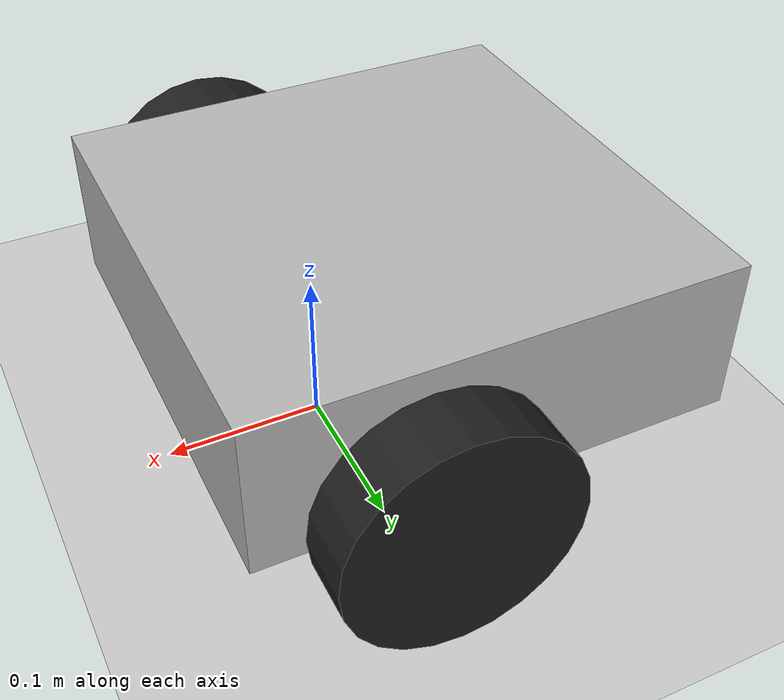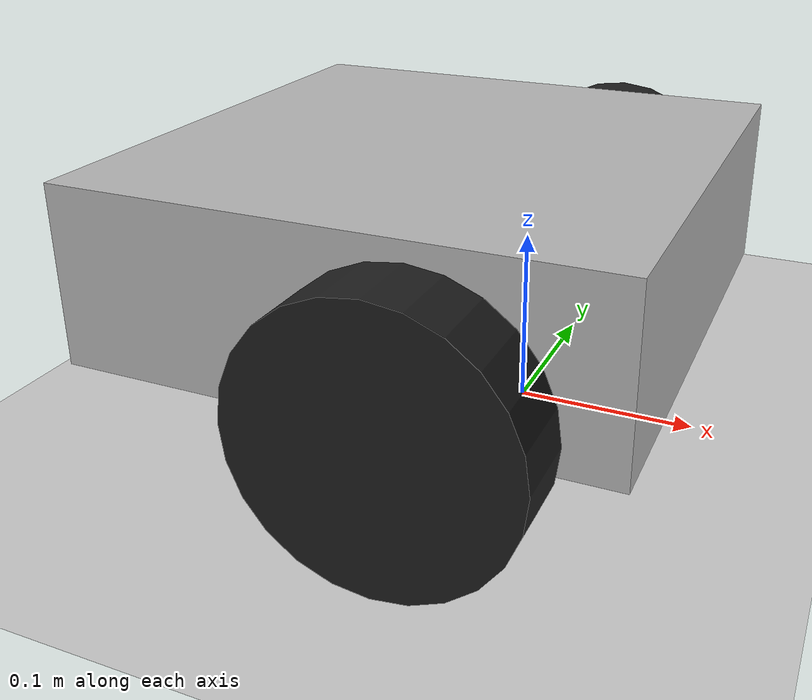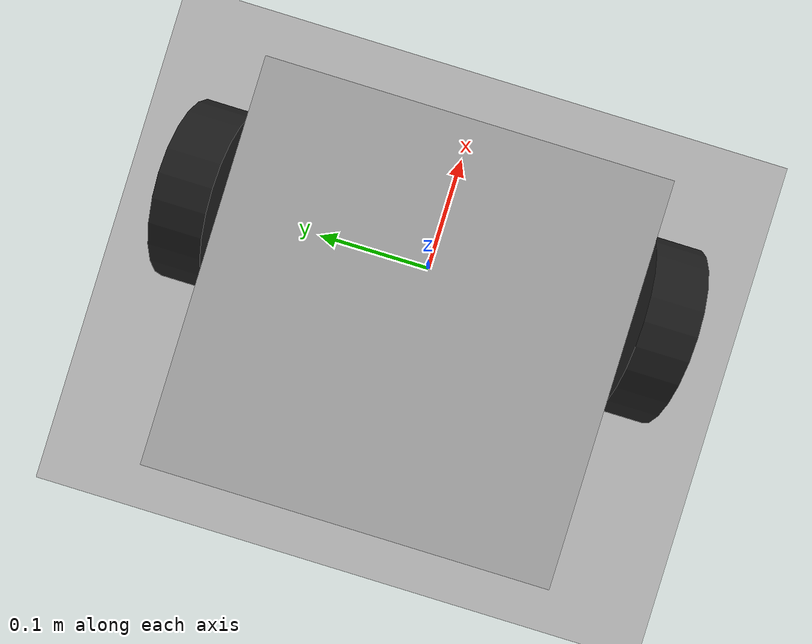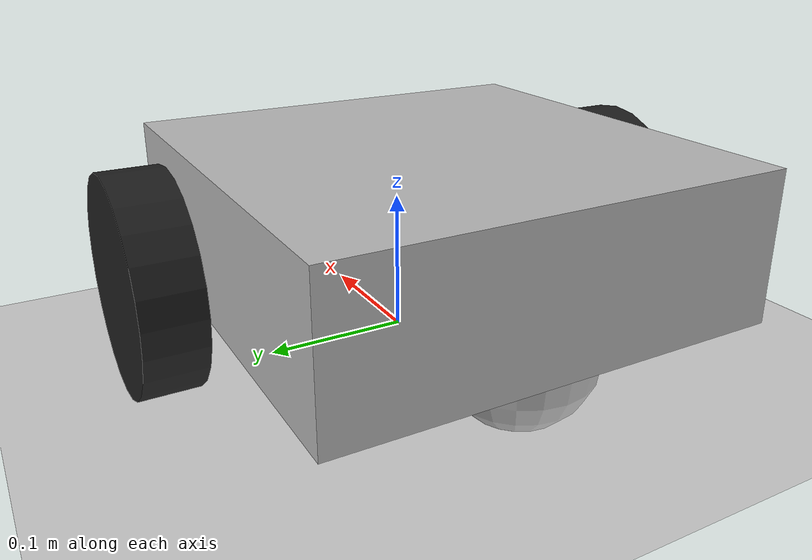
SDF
<?xml version="1.0"?>
<sdf version="1.5">
    <world name="default">
        <include>
            <uri>model://sun</uri>
        </include>

        <include>
            <uri>model://ground_plane</uri>
        </include>

        <include>
            <uri>model://wheel_robot_simple</uri>
        </include>
    </world>
</sdf>

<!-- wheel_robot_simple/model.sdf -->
<sdf version="1.4">
  <model name="whell_robot_simple">
    <link name="body_link">
      <pose>-0.05 0 0.1 0 0 0</pose>
      <inertial>
        <mass>5.0</mass>
        <inertia>
          <ixx>0.042</ixx>
          <ixy>0.0</ixy>
          <ixz>0.0</ixz>
          <iyy>0.042</iyy>
          <iyz>0.0</iyz>
          <izz>0.075</izz>
        </inertia>
      </inertial>
      <collision name="collision">
        <geometry>
          <box>
            <size>0.3 0.3 0.1</size>
          </box>
        </geometry>
      </collision>
      <visual name="visual">
        <geometry>
          <box>
            <size>0.3 0.3 0.1</size>
          </box>
        </geometry>
      </visual>
    </link>

    <joint name="back_ball_joint" type="fixed">
      <parent>body_link</parent>
      <child>back_ball_link</child>
      <pose>0 0 0 0 0 0</pose>
    </joint>
    <link name="back_ball_link">
      <pose>-0.15 0 0.05 0 0 0</pose>
      <inertial>
        <mass>0.1</mass>
        <inertia>
          <ixx>0.000001</ixx>
          <ixy>0.0</ixy>
          <ixz>0.0</ixz>
          <iyy>0.000001</iyy>
          <iyz>0.0</iyz>
          <izz>0.000001</izz>
        </inertia>
      </inertial>
      <collision name="collision">
        <geometry>
          <sphere>
            <radius>0.05</radius>
          </sphere>
        </geometry>
        <surface>
          <friction>
            <ode>
              <mu>0.01</mu>
              <mu2>0.01</mu2>
            </ode>
          </friction>
          <contact>
            <ode>
              <kp>100000</kp>
              <kd>1</kd>
            </ode>
          </contact>
        </surface>
      </collision>
      <visual name="visual">
        <geometry>
          <sphere>
            <radius>0.05</radius>
          </sphere>
        </geometry>
      </visual>
    </link>

    <joint name="left_wheel_joint" type="revolute">
      <parent>body_link</parent>
      <child>left_wheel_link</child>
      <pose>0 0 0 0 0 0</pose>
      <axis>
        <xyz>0 1 0</xyz>
      </axis>
    </joint>
    <link name="left_wheel_link">
      <pose>0 0.18 0.072 1.5707 0 0</pose>
      <inertial>
        <mass>0.2</mass>
        <inertia>
          <ixx>0.00026</ixx>
          <ixy>0.0</ixy>
          <ixz>0.0</ixz>
          <iyy>0.00026</iyy>
          <iyz>0.0</iyz>
          <izz>0.00052</izz>
        </inertia>
      </inertial>
      <collision name="collision">
        <geometry>
          <cylinder>
            <radius>0.072</radius>
            <length>0.04</length>
          </cylinder>
        </geometry>
        <surface>
          <friction>
            <ode>
              <mu>0.5</mu>
              <mu2>0.5</mu2>
            </ode>
          </friction>
          <contact>
            <ode>
              <kp>100000</kp>
              <kd>1</kd>
            </ode>
          </contact>
        </surface>
      </collision>
      <visual name="visual">
        <geometry>
          <cylinder>
            <radius>0.072</radius>
            <length>0.04</length>
          </cylinder>
        </geometry>
        <material>
          <script>
            <uri>file://media/materials/scripts/gazebo.material</uri>
            <name>Gazebo/Black</name>
          </script>
        </material>
      </visual>
    </link>

    <joint name="right_wheel_joint" type="revolute">
      <parent>body_link</parent>
      <child>right_wheel_link</child>
      <pose>0 0 0 0 0 0</pose>
      <axis>
        <xyz>0 1 0</xyz>
      </axis>
    </joint>
    <link name="right_wheel_link">
      <pose>0 -0.18 0.072 1.5707 0 0</pose>
      <inertial>
        <mass>0.2</mass>
        <inertia>
          <ixx>0.00026</ixx>
          <ixy>0.0</ixy>
          <ixz>0.0</ixz>
          <iyy>0.00026</iyy>
          <iyz>0.0</iyz>
          <izz>0.00052</izz>
        </inertia>
      </inertial>
      <collision name="collision">
        <geometry>
          <cylinder>
            <radius>0.072</radius>
            <length>0.04</length>
          </cylinder>
        </geometry>
        <surface>
          <friction>
            <ode>
              <mu>0.5</mu>
              <mu2>0.5</mu2>
            </ode>
          </friction>
          <contact>
            <ode>
              <kp>100000</kp>
              <kd>1</kd>
            </ode>
          </contact>
        </surface>
      </collision>
      <visual name="visual">
        <geometry>
          <cylinder>
            <radius>0.072</radius>
            <length>0.04</length>
          </cylinder>
        </geometry>
        <material>
          <script>
            <uri>file://media/materials/scripts/gazebo.material</uri>
            <name>Gazebo/Black</name>
          </script>
        </material>
      </visual>
    </link>

    <plugin name="differential_drive_controller" filename="libgazebo_ros_diff_drive.so">
      <commandTopic>/cmd_vel</commandTopic>
      <odometryTopic>/odom</odometryTopic>
      <odometryFrame>odom</odometryFrame>
      <robotBaseFrame>base_link</robotBaseFrame>
      <publishWheelTF>false</publishWheelTF>
      <publishOdomTF>true</publishOdomTF>
      <publishWheelJointState>false</publishWheelJointState>
      <wheelSeparation>0.36</wheelSeparation>
      <wheelDiameter>0.144</wheelDiameter>
      <wheelAcceleration>30</wheelAcceleration>
      <wheelTorque>5.0</wheelTorque>
      <updateRate>40</updateRate>
      <odometrySource>encoder</odometrySource>
      <leftJoint>left_wheel_joint</leftJoint>
      <rightJoint>right_wheel_joint</rightJoint>
      <publishTf>true</publishTf>
    </plugin>
  </model>
</sdf>
